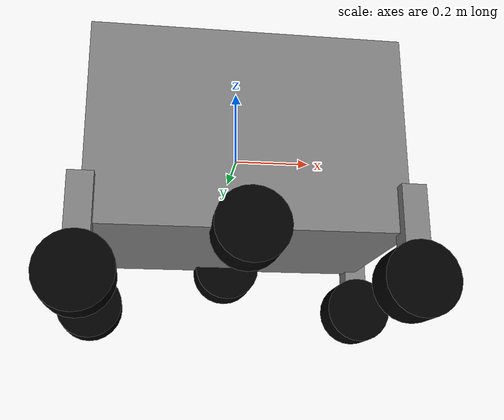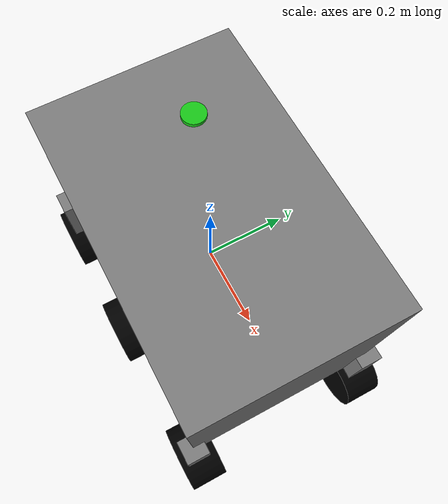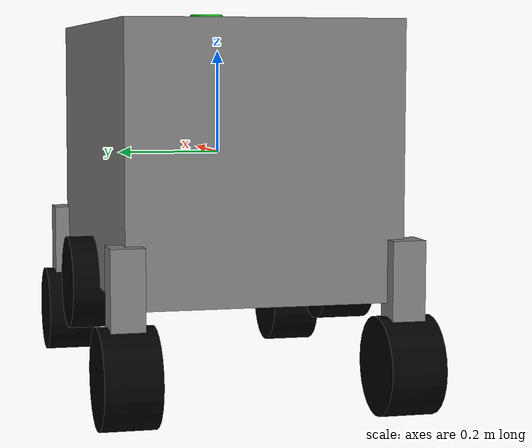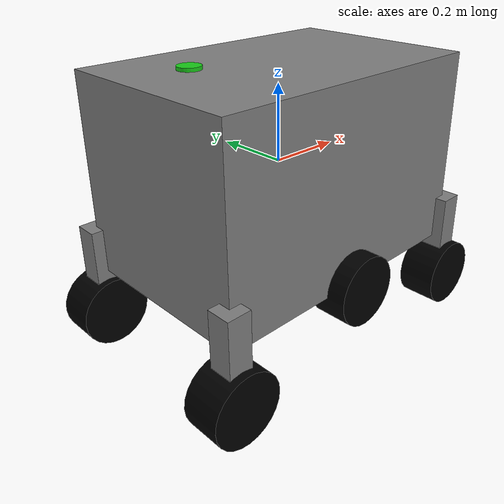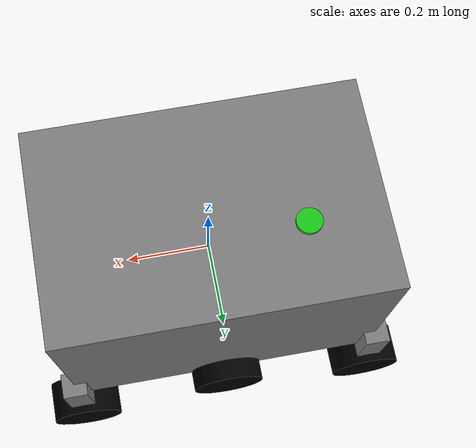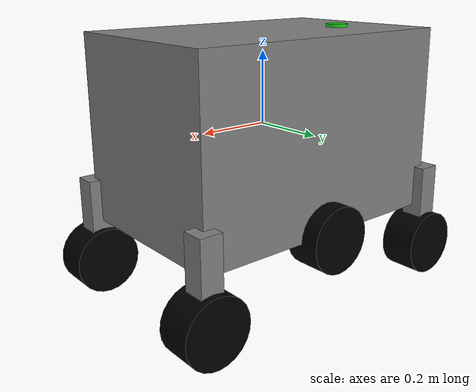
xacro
<?xml version="1.0"?>

<robot xmlns:xacro="http://www.ros.org/wiki/xacro" name="kipp">

<!-- Robot constants-->

<xacro:property name="base_width" value= "0.5084"/>
<xacro:property name="base_height" value="0.51"/>
<xacro:property name="base_length" value="0.77975"/>

<xacro:property name="wheel_radius" value="0.0909"/>
<xacro:property name="wheel_width" value="0.1016"/>

<xacro:property name="footprint" value="${-((base_height/2)+(wheel_radius))}"/>

<xacro:property name="steering_xy" value="0.06155"/>
<xacro:property name="steering_z" value="0.23"/>

<xacro:property name="gnss_x" value="-0.21"/>
<xacro:property name="gnss_y" value="0.07"/>
<xacro:property name="gnss_z" value="${0.60+footprint}"/>
<xacro:property name="gnss_radius" value="0.03"/>
<xacro:property name="gnss_width" value="0.02"/>

<xacro:property name="imu_x" value="-0.21"/>
<xacro:property name="imu_y" value="0.07"/>
<xacro:property name="imu_z" value="${0.60+footprint}"/>
<xacro:property name="imu_radius" value="0.03"/>
<xacro:property name="imu_width" value="0.02"/>

<xacro:property name="height_offset" value="0.1"/>

<xacro:property name="PI" value="3.1415692"/>

    <!-- Robot Base -->
   <link name="base_link">
        <visual>
            <geometry>
                <box size="${base_length} ${base_width} ${base_height}"/>
            </geometry>
            <material name="rover_material">
                <color rgba="0.5 0.5 0.5 1.0" />
            </material>
        </visual>
        <!-- Added Collision -->
        <collision>
             <origin xyz="0 0 0" rpy="0 0 0"/>
             <geometry>
                 <box size="${base_length} ${base_width} ${base_height}"/>
             </geometry>
        </collision>
        <!-- Added Inertial (PLACEHOLDER VALUES - UPDATE FOR ACCURACY) -->
        <inertial>
            <mass value="20.0"/> <!-- Estimated mass in kg -->
            <origin xyz="0 0 0" rpy="0 0 0"/> <!-- Assuming geometric center is CoM -->
            <inertia ixx="1.5" ixy="0.0" ixz="0.0"
                     iyy="2.5" iyz="0.0"
                     izz="3.5"/> <!-- Placeholder inertia tensor -->
        </inertial>
    </link>

    <!-- Robot Footprint (Virtual Link - No Collision/Inertial) -->
    <link name="base_footprint"/>

    <joint name="base_joint" type="fixed">
        <parent link="base_link"/>
        <child link="base_footprint"/>
        <origin xyz="0.0 0.0 ${footprint-wheel_radius}" rpy="0 0 0"/>
    </joint>

    <!-- Steering Macro -->
    <xacro:macro name="steering" params="prefix x_reflect y_reflect">
        <link name="${prefix}_steering_link">
            <visual>
                <origin xyz="0 0 0" rpy="0 0 0"/>
                <geometry>
                    <box size="${steering_xy} ${steering_xy} ${steering_z}"/>
                </geometry>
                <material name="Gray">
                    <color rgba="0.5 0.5 0.5 1.0"/>
                </material>
            </visual>
            <!-- Added Collision -->
            <collision>
                <origin xyz="0 0 0" rpy="0 0 0"/>
                <geometry>
                    <box size="${steering_xy} ${steering_xy} ${steering_z}"/>
                </geometry>
            </collision>
            <!-- Added Inertial (PLACEHOLDER VALUES - UPDATE FOR ACCURACY) -->
            <inertial>
                <mass value="0.2"/> <!-- Estimated mass in kg -->
                <origin xyz="0 0 0" rpy="0 0 0"/>
                <inertia ixx="0.0001" ixy="0.0" ixz="0.0"
                         iyy="0.0001" iyz="0.0"
                         izz="0.0001"/> <!-- Placeholder inertia tensor -->
            </inertial>
        </link>

        <joint name="${prefix}_steering_joint" type="revolute">
            <parent link="base_link"/>
            <child link="${prefix}_steering_link"/>
            <axis xyz="0 0 1"/>
            <origin xyz="${(x_reflect*base_length)/2} ${(y_reflect*base_width)/2} ${(footprint+wheel_radius)}" rpy="0 0 0"/>
            <limit lower="${-(PI/2)}" upper="${(PI/2)}" effort="10.0" velocity="1.0"/> <!-- Added effort/velocity limits -->
        </joint>
    </xacro:macro>

    <xacro:steering prefix="front_left" x_reflect="1" y_reflect="1"/>
    <xacro:steering prefix="front_right" x_reflect="1" y_reflect="-1"/>
    <xacro:steering prefix="back_left" x_reflect="-1" y_reflect="1"/>
    <xacro:steering prefix="back_right" x_reflect="-1" y_reflect="-1"/>

    <!-- Edge Wheels Macro -->
    <xacro:macro name="edge_wheel" params="prefix x_reflect y_reflect">
        <link name="${prefix}_wheel_link">
            <visual>
                <origin xyz="0 0 0" rpy="${PI/2} 0 0"/>
                <geometry>
                    <cylinder radius="${wheel_radius}" length="${wheel_width}"/>
                </geometry>
                <material name="black">
                    <color rgba="0.0 0.0 0.0 1.0"/>
                </material>
            </visual>
            <!-- Added Collision -->
            <collision>
                <origin xyz="0 0 0" rpy="${PI/2} 0 0"/>
                 <geometry>
                    <cylinder radius="${wheel_radius}" length="${wheel_width}"/>
                 </geometry>
            </collision>
            <!-- Added Inertial (PLACEHOLDER VALUES - UPDATE FOR ACCURACY) -->
            <inertial>
                <mass value="0.5"/> <!-- Estimated wheel mass in kg -->
                <origin xyz="0 0 0" rpy="${PI/2} 0 0"/>
                 <inertia ixx="0.001" ixy="0.0" ixz="0.0"
                          iyy="0.0005" iyz="0.0"
                          izz="0.0005"/> <!-- Placeholder inertia tensor for cylinder on X-axis -->
            </inertial>
        </link>

        <joint name="${prefix}_wheel_joint" type="continuous"> <!-- Changed to continuous -->
            <parent link="${prefix}_steering_link"/> <!-- **** CHANGED PARENT TO STEERING LINK **** -->
            <child link="${prefix}_wheel_link"/>
            <!-- Wheel origin relative to steering link -->
            <origin xyz="0 0 ${-(steering_z/2)}" rpy="0 0 0"/>
            <axis xyz="0 1 0"/> <!-- Axis of rotation for driving -->
             <!-- Add limits if needed for continuous, usually not -->
        </joint>
    </xacro:macro>

    <!-- Create Edge Wheels - NOTE: Parent link changed in macro above -->
    <xacro:edge_wheel prefix="front_left" x_reflect="1" y_reflect="1"/>
    <xacro:edge_wheel prefix="front_right" x_reflect="1" y_reflect="-1"/>
    <xacro:edge_wheel prefix="back_left" x_reflect="-1" y_reflect="1"/>
    <xacro:edge_wheel prefix="back_right" x_reflect="-1" y_reflect="-1"/>

    <!-- Middle Left Wheel -->
    <link name="middle_left_wheel_link">
        <visual>
            <origin xyz="0 0 0" rpy="${PI/2} 0 0"/>
            <geometry>
                <cylinder radius="${wheel_radius}" length="${wheel_width}"/>
            </geometry>
            <material name="black"/>
        </visual>
        <!-- Added Collision -->
        <collision>
             <origin xyz="0 0 0" rpy="${PI/2} 0 0"/>
             <geometry>
                <cylinder radius="${wheel_radius}" length="${wheel_width}"/>
            </geometry>
        </collision>
        <!-- Added Inertial (PLACEHOLDER VALUES - UPDATE FOR ACCURACY) -->
        <inertial>
            <mass value="0.5"/> <!-- Estimated wheel mass in kg -->
            <origin xyz="0 0 0" rpy="${PI/2} 0 0"/>
            <inertia ixx="0.001" ixy="0.0" ixz="0.0"
                     iyy="0.0005" iyz="0.0"
                     izz="0.0005"/> <!-- Placeholder inertia tensor -->
        </inertial>
    </link>

    <joint name="middle_left_wheel_joint" type="continuous">
        <parent link="base_link"/>
        <child link="middle_left_wheel_link"/>
        <origin xyz="0 ${(base_width)/2} ${footprint+wheel_radius}" rpy="0 0 0"/> <!-- Adjusted Z origin -->
        <axis xyz="0 1 0"/> <!-- Axis of rotation for driving -->
    </joint>

    <!-- Middle Right Wheel -->
    <link name="middle_right_wheel_link">
        <visual>
            <origin xyz="0 0 0" rpy="${PI/2} 0 0"/>
            <geometry>
                <cylinder radius="${wheel_radius}" length="${wheel_width}"/>
            </geometry>
            <material name="black"/>
        </visual>
        <!-- Added Collision -->
        <collision>
            <origin xyz="0 0 0" rpy="${PI/2} 0 0"/>
            <geometry>
                <cylinder radius="${wheel_radius}" length="${wheel_width}"/>
            </geometry>
        </collision>
        <!-- Added Inertial (PLACEHOLDER VALUES - UPDATE FOR ACCURACY) -->
        <inertial>
            <mass value="0.5"/> <!-- Estimated wheel mass in kg -->
            <origin xyz="0 0 0" rpy="${PI/2} 0 0"/>
            <inertia ixx="0.001" ixy="0.0" ixz="0.0"
                     iyy="0.0005" iyz="0.0"
                     izz="0.0005"/> <!-- Placeholder inertia tensor -->
        </inertial>
    </link>

    <joint name="middle_right_wheel_joint" type="continuous">
        <parent link="base_link"/>
        <child link="middle_right_wheel_link"/>
        <origin xyz="0 ${-(base_width)/2} ${footprint+wheel_radius}" rpy="0 0 0"/> <!-- Adjusted Z origin -->
        <axis xyz="0 1 0"/> <!-- Axis of rotation for driving -->
    </joint>

    <!-- Sensors -->

  <link name="gnss_link">
        <visual>
            <origin xyz="0.0 0.0 0.0" rpy="0.0 0.0 0.0"/>
            <geometry>
                <cylinder radius="${gnss_radius}" length="${gnss_width}"/>
            </geometry>
            <material name="sensor_material"> <!-- Optional: Define sensor material -->
                 <color rgba="0.1 0.8 0.1 1.0" />
            </material>
        </visual>
        <!-- Added Collision -->
        <collision>
            <origin xyz="0.0 0.0 0.0" rpy="0.0 0.0 0.0"/>
            <geometry>
                <cylinder radius="${gnss_radius}" length="${gnss_width}"/>
            </geometry>
        </collision>
        <!-- Added Inertial (PLACEHOLDER VALUES - UPDATE FOR ACCURACY) -->
        <inertial>
            <mass value="0.05"/> <!-- Estimated sensor mass -->
            <origin xyz="0.0 0.0 0.0" rpy="0.0 0.0 0.0"/>
            <inertia ixx="1e-6" ixy="0.0" ixz="0.0"
                     iyy="1e-6" iyz="0.0"
                     izz="1e-6"/> <!-- Very small inertia -->
        </inertial>
   </link>

    <joint name="gnss_joint" type="fixed">
        <parent link="base_link"/>
        <child link="gnss_link"/>
        <origin xyz="${gnss_x} ${gnss_y} ${gnss_z}" rpy="0 0 0"/>
    </joint>

    <link name="imu_link">
        <visual>
            <origin xyz="0.0 0.0 0.0" rpy="0.0 0.0 0.0"/> <!-- Simpler rpy for IMU box usually -->
            <geometry>
                <!-- Maybe use a small box for IMU visual/collision -->
                <box size="0.03 0.03 0.01"/>
            </geometry>
             <material name="sensor_material"/>
        </visual>
         <!-- Added Collision -->
         <collision>
            <origin xyz="0.0 0.0 0.0" rpy="0.0 0.0 0.0"/>
            <geometry>
                 <box size="0.03 0.03 0.01"/>
            </geometry>
         </collision>
        <!-- Added Inertial (PLACEHOLDER VALUES - UPDATE FOR ACCURACY) -->
        <inertial>
            <mass value="0.02"/> <!-- Estimated sensor mass -->
            <origin xyz="0.0 0.0 0.0" rpy="0.0 0.0 0.0"/>
            <inertia ixx="1e-7" ixy="0.0" ixz="0.0"
                     iyy="1e-7" iyz="0.0"
                     izz="1e-7"/> <!-- Very small inertia -->
        </inertial>
    </link>

    <joint name="imu_joint" type="fixed">
        <parent link="base_link"/>
        <child link="imu_link"/>
        <origin xyz="${imu_x} ${imu_y} ${imu_z}" rpy="0 0 0"/>
    </joint>

    <!-- Define materials if not already defined -->
    <material name="black">
        <color rgba="0.0 0.0 0.0 1.0"/>
    </material>
     <material name="Gray">
        <color rgba="0.5 0.5 0.5 1.0"/>
    </material>
    <material name="rover_material">
        <color rgba="0.5 0.5 0.5 1.0" />
    </material>
     <material name="sensor_material">
        <color rgba="0.1 0.8 0.1 1.0" />
    </material>

</robot>
